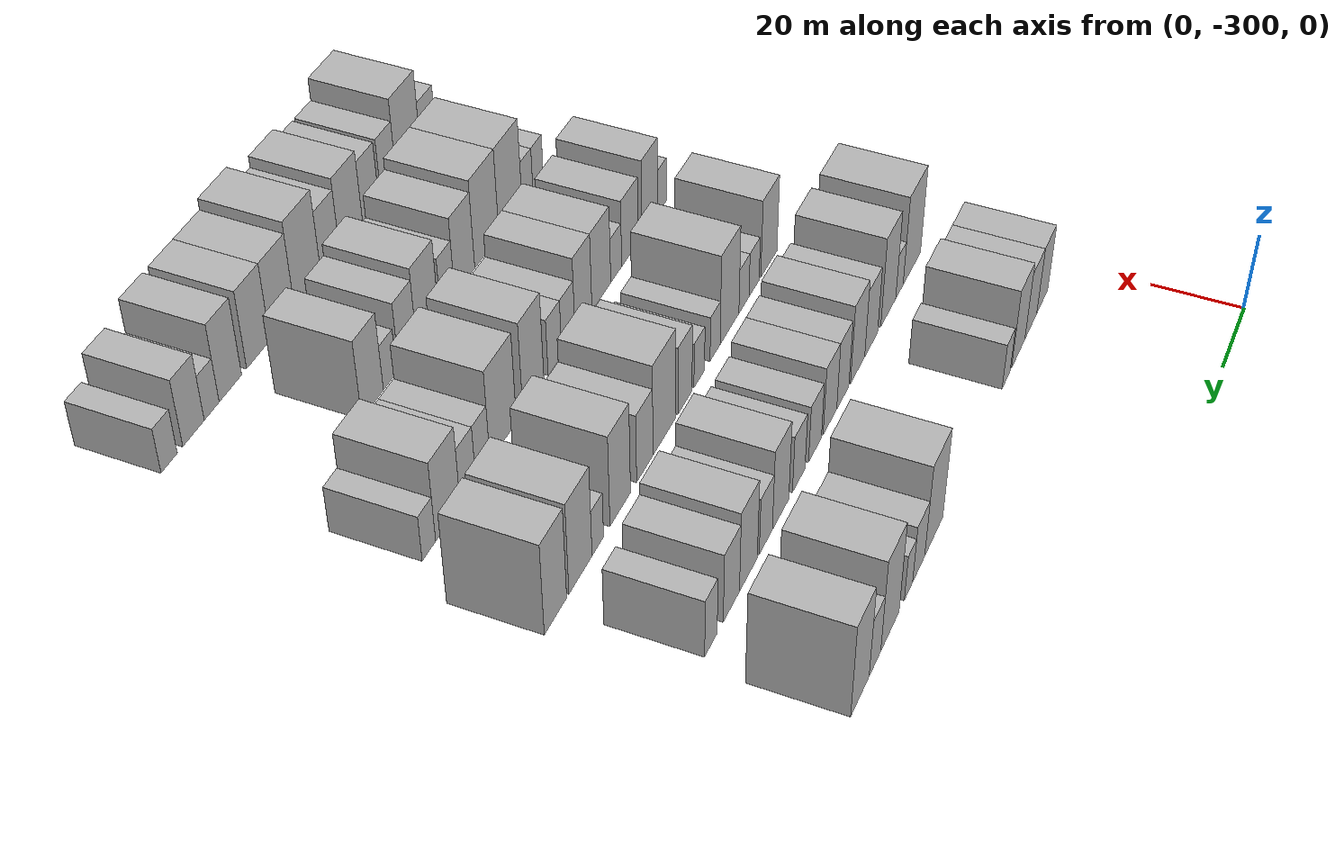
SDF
<sdf version="1.6">
 <world name="default">
  <model name="building_25">
   <static>1</static>
   <pose>50.0000 -285.5791 0 0.000000 0.000000 0.000000</pose>
   <link name="link">
    <pose>0 0 9.00 0 0 0</pose>
    <collision name="collision"><geometry><box><size>20.0000 8.3112 18.0000</size></box></geometry></collision>
    <visual name="visual">
     <cast_shadows>0</cast_shadows>
     <geometry><box><size>20.0000 8.3112 18.0000</size></box></geometry>
     <material>
      <script>
       <uri>model://HANNAS_wall/materials/scripts</uri>
       <uri>model://HANNAS_wall/materials/textures</uri>
       <name>vrc/HANNAS_wall</name>
      </script>
     </material>
    </visual>
   </link>
  </model>
  <model name="building_26">
   <static>1</static>
   <pose>50.0000 -277.0363 0 0.000000 0.000000 0.000000</pose>
   <link name="link">
    <pose>0 0 9.00 0 0 0</pose>
    <collision name="collision"><geometry><box><size>20.0000 8.7744 18.0000</size></box></geometry></collision>
    <visual name="visual">
     <cast_shadows>0</cast_shadows>
     <geometry><box><size>20.0000 8.7744 18.0000</size></box></geometry>
     <material>
      <script>
       <uri>model://HANNAS_wall/materials/scripts</uri>
       <uri>model://HANNAS_wall/materials/textures</uri>
       <name>vrc/HANNAS_wall</name>
      </script>
     </material>
    </visual>
   </link>
  </model>
  <model name="building_27">
   <static>1</static>
   <pose>50.0000 -267.8345 0 0.000000 0.000000 0.000000</pose>
   <link name="link">
    <pose>0 0 10.50 0 0 0</pose>
    <collision name="collision"><geometry><box><size>20.0000 9.6290 21.0000</size></box></geometry></collision>
    <visual name="visual">
     <cast_shadows>0</cast_shadows>
     <geometry><box><size>20.0000 9.6290 21.0000</size></box></geometry>
     <material>
      <script>
       <uri>model://HANNAS_wall/materials/scripts</uri>
       <uri>model://HANNAS_wall/materials/textures</uri>
       <name>vrc/HANNAS_wall</name>
      </script>
     </material>
    </visual>
   </link>
  </model>
  <model name="building_28">
   <static>1</static>
   <pose>50.0000 -259.2189 0 0.000000 0.000000 0.000000</pose>
   <link name="link">
    <pose>0 0 6.00 0 0 0</pose>
    <collision name="collision"><geometry><box><size>20.0000 5.6021 12.0000</size></box></geometry></collision>
    <visual name="visual">
     <cast_shadows>0</cast_shadows>
     <geometry><box><size>20.0000 5.6021 12.0000</size></box></geometry>
     <material>
      <script>
       <uri>model://HANNAS_wall/materials/scripts</uri>
       <uri>model://HANNAS_wall/materials/textures</uri>
       <name>vrc/HANNAS_wall</name>
      </script>
     </material>
    </visual>
   </link>
  </model>
  <model name="building_29">
   <static>1</static>
   <pose>50.0000 -211.8203 0 0.000000 0.000000 0.000000</pose>
   <link name="link">
    <pose>0 0 12.00 0 0 0</pose>
    <collision name="collision"><geometry><box><size>20.0000 11.0650 24.0000</size></box></geometry></collision>
    <visual name="visual">
     <cast_shadows>0</cast_shadows>
     <geometry><box><size>20.0000 11.0650 24.0000</size></box></geometry>
     <material>
      <script>
       <uri>model://HANNAS_wall/materials/scripts</uri>
       <uri>model://HANNAS_wall/materials/textures</uri>
       <name>vrc/HANNAS_wall</name>
      </script>
     </material>
    </visual>
   </link>
  </model>
  <model name="building_30">
   <static>1</static>
   <pose>50.0000 -202.6941 0 0.000000 0.000000 0.000000</pose>
   <link name="link">
    <pose>0 0 7.50 0 0 0</pose>
    <collision name="collision"><geometry><box><size>20.0000 7.1874 15.0000</size></box></geometry></collision>
    <visual name="visual">
     <cast_shadows>0</cast_shadows>
     <geometry><box><size>20.0000 7.1874 15.0000</size></box></geometry>
     <material>
      <script>
       <uri>model://HANNAS_wall/materials/scripts</uri>
       <uri>model://HANNAS_wall/materials/textures</uri>
       <name>vrc/HANNAS_wall</name>
      </script>
     </material>
    </visual>
   </link>
  </model>
  <model name="building_31">
   <static>1</static>
   <pose>50.0000 -196.7004 0 0.000000 0.000000 0.000000</pose>
   <link name="link">
    <pose>0 0 6.00 0 0 0</pose>
    <collision name="collision"><geometry><box><size>20.0000 4.8000 12.0000</size></box></geometry></collision>
    <visual name="visual">
     <cast_shadows>0</cast_shadows>
     <geometry><box><size>20.0000 4.8000 12.0000</size></box></geometry>
     <material>
      <script>
       <uri>model://HANNAS_wall/materials/scripts</uri>
       <uri>model://HANNAS_wall/materials/textures</uri>
       <name>vrc/HANNAS_wall</name>
      </script>
     </material>
    </visual>
   </link>
  </model>
  <model name="building_32">
   <static>1</static>
   <pose>50.0000 -186.1310 0 0.000000 0.000000 0.000000</pose>
   <link name="link">
    <pose>0 0 12.00 0 0 0</pose>
    <collision name="collision"><geometry><box><size>20.0000 10.3387 24.0000</size></box></geometry></collision>
    <visual name="visual">
     <cast_shadows>0</cast_shadows>
     <geometry><box><size>20.0000 10.3387 24.0000</size></box></geometry>
     <material>
      <script>
       <uri>model://HANNAS_wall/materials/scripts</uri>
       <uri>model://HANNAS_wall/materials/textures</uri>
       <name>vrc/HANNAS_wall</name>
      </script>
     </material>
    </visual>
   </link>
  </model>
  <model name="building_33">
   <static>1</static>
   <pose>50.0000 -177.7815 0 0.000000 0.000000 0.000000</pose>
   <link name="link">
    <pose>0 0 7.50 0 0 0</pose>
    <collision name="collision"><geometry><box><size>20.0000 6.3604 15.0000</size></box></geometry></collision>
    <visual name="visual">
     <cast_shadows>0</cast_shadows>
     <geometry><box><size>20.0000 6.3604 15.0000</size></box></geometry>
     <material>
      <script>
       <uri>model://HANNAS_wall/materials/scripts</uri>
       <uri>model://HANNAS_wall/materials/textures</uri>
       <name>vrc/HANNAS_wall</name>
      </script>
     </material>
    </visual>
   </link>
  </model>
  <model name="building_34">
   <static>1</static>
   <pose>50.0000 -169.6660 0 0.000000 0.000000 0.000000</pose>
   <link name="link">
    <pose>0 0 12.00 0 0 0</pose>
    <collision name="collision"><geometry><box><size>20.0000 9.8707 24.0000</size></box></geometry></collision>
    <visual name="visual">
     <cast_shadows>0</cast_shadows>
     <geometry><box><size>20.0000 9.8707 24.0000</size></box></geometry>
     <material>
      <script>
       <uri>model://HANNAS_wall/materials/scripts</uri>
       <uri>model://HANNAS_wall/materials/textures</uri>
       <name>vrc/HANNAS_wall</name>
      </script>
     </material>
    </visual>
   </link>
  </model>
  <model name="building_130">
   <static>1</static>
   <pose>79.0000 -285.2122 0 0.000000 0.000000 0.000000</pose>
   <link name="link">
    <pose>0 0 12.00 0 0 0</pose>
    <collision name="collision"><geometry><box><size>20.0000 11.6987 24.0000</size></box></geometry></collision>
    <visual name="visual">
     <cast_shadows>0</cast_shadows>
     <geometry><box><size>20.0000 11.6987 24.0000</size></box></geometry>
     <material>
      <script>
       <uri>model://HANNAS_wall/materials/scripts</uri>
       <uri>model://HANNAS_wall/materials/textures</uri>
       <name>vrc/HANNAS_wall</name>
      </script>
     </material>
    </visual>
   </link>
  </model>
  <model name="building_131">
   <static>1</static>
   <pose>79.0000 -276.8931 0 0.000000 0.000000 0.000000</pose>
   <link name="link">
    <pose>0 0 6.00 0 0 0</pose>
    <collision name="collision"><geometry><box><size>20.0000 4.9396 12.0000</size></box></geometry></collision>
    <visual name="visual">
     <cast_shadows>0</cast_shadows>
     <geometry><box><size>20.0000 4.9396 12.0000</size></box></geometry>
     <material>
      <script>
       <uri>model://HANNAS_wall/materials/scripts</uri>
       <uri>model://HANNAS_wall/materials/textures</uri>
       <name>vrc/HANNAS_wall</name>
      </script>
     </material>
    </visual>
   </link>
  </model>
  <model name="building_132">
   <static>1</static>
   <pose>79.0000 -269.5852 0 0.000000 0.000000 0.000000</pose>
   <link name="link">
    <pose>0 0 12.00 0 0 0</pose>
    <collision name="collision"><geometry><box><size>20.0000 9.6762 24.0000</size></box></geometry></collision>
    <visual name="visual">
     <cast_shadows>0</cast_shadows>
     <geometry><box><size>20.0000 9.6762 24.0000</size></box></geometry>
     <material>
      <script>
       <uri>model://HANNAS_wall/materials/scripts</uri>
       <uri>model://HANNAS_wall/materials/textures</uri>
       <name>vrc/HANNAS_wall</name>
      </script>
     </material>
    </visual>
   </link>
  </model>
  <model name="building_133">
   <static>1</static>
   <pose>79.0000 -258.6837 0 0.000000 0.000000 0.000000</pose>
   <link name="link">
    <pose>0 0 9.00 0 0 0</pose>
    <collision name="collision"><geometry><box><size>20.0000 8.1267 18.0000</size></box></geometry></collision>
    <visual name="visual">
     <cast_shadows>0</cast_shadows>
     <geometry><box><size>20.0000 8.1267 18.0000</size></box></geometry>
     <material>
      <script>
       <uri>model://HANNAS_wall/materials/scripts</uri>
       <uri>model://HANNAS_wall/materials/textures</uri>
       <name>vrc/HANNAS_wall</name>
      </script>
     </material>
    </visual>
   </link>
  </model>
  <model name="building_134">
   <static>1</static>
   <pose>79.0000 -250.2493 0 0.000000 0.000000 0.000000</pose>
   <link name="link">
    <pose>0 0 10.50 0 0 0</pose>
    <collision name="collision"><geometry><box><size>20.0000 8.7421 21.0000</size></box></geometry></collision>
    <visual name="visual">
     <cast_shadows>0</cast_shadows>
     <geometry><box><size>20.0000 8.7421 21.0000</size></box></geometry>
     <material>
      <script>
       <uri>model://HANNAS_wall/materials/scripts</uri>
       <uri>model://HANNAS_wall/materials/textures</uri>
       <name>vrc/HANNAS_wall</name>
      </script>
     </material>
    </visual>
   </link>
  </model>
  <model name="building_135">
   <static>1</static>
   <pose>79.0000 -241.2637 0 0.000000 0.000000 0.000000</pose>
   <link name="link">
    <pose>0 0 9.00 0 0 0</pose>
    <collision name="collision"><geometry><box><size>20.0000 7.2292 18.0000</size></box></geometry></collision>
    <visual name="visual">
     <cast_shadows>0</cast_shadows>
     <geometry><box><size>20.0000 7.2292 18.0000</size></box></geometry>
     <material>
      <script>
       <uri>model://HANNAS_wall/materials/scripts</uri>
       <uri>model://HANNAS_wall/materials/textures</uri>
       <name>vrc/HANNAS_wall</name>
      </script>
     </material>
    </visual>
   </link>
  </model>
  <model name="building_136">
   <static>1</static>
   <pose>79.0000 -233.6726 0 0.000000 0.000000 0.000000</pose>
   <link name="link">
    <pose>0 0 9.00 0 0 0</pose>
    <collision name="collision"><geometry><box><size>20.0000 7.9530 18.0000</size></box></geometry></collision>
    <visual name="visual">
     <cast_shadows>0</cast_shadows>
     <geometry><box><size>20.0000 7.9530 18.0000</size></box></geometry>
     <material>
      <script>
       <uri>model://HANNAS_wall/materials/scripts</uri>
       <uri>model://HANNAS_wall/materials/textures</uri>
       <name>vrc/HANNAS_wall</name>
      </script>
     </material>
    </visual>
   </link>
  </model>
  <model name="building_137">
   <static>1</static>
   <pose>79.0000 -225.0202 0 0.000000 0.000000 0.000000</pose>
   <link name="link">
    <pose>0 0 7.50 0 0 0</pose>
    <collision name="collision"><geometry><box><size>20.0000 7.3518 15.0000</size></box></geometry></collision>
    <visual name="visual">
     <cast_shadows>0</cast_shadows>
     <geometry><box><size>20.0000 7.3518 15.0000</size></box></geometry>
     <material>
      <script>
       <uri>model://HANNAS_wall/materials/scripts</uri>
       <uri>model://HANNAS_wall/materials/textures</uri>
       <name>vrc/HANNAS_wall</name>
      </script>
     </material>
    </visual>
   </link>
  </model>
  <model name="building_138">
   <static>1</static>
   <pose>79.0000 -215.8601 0 0.000000 0.000000 0.000000</pose>
   <link name="link">
    <pose>0 0 7.50 0 0 0</pose>
    <collision name="collision"><geometry><box><size>20.0000 6.9683 15.0000</size></box></geometry></collision>
    <visual name="visual">
     <cast_shadows>0</cast_shadows>
     <geometry><box><size>20.0000 6.9683 15.0000</size></box></geometry>
     <material>
      <script>
       <uri>model://HANNAS_wall/materials/scripts</uri>
       <uri>model://HANNAS_wall/materials/textures</uri>
       <name>vrc/HANNAS_wall</name>
      </script>
     </material>
    </visual>
   </link>
  </model>
  <model name="building_139">
   <static>1</static>
   <pose>79.0000 -205.9553 0 0.000000 0.000000 0.000000</pose>
   <link name="link">
    <pose>0 0 10.50 0 0 0</pose>
    <collision name="collision"><geometry><box><size>20.0000 8.8414 21.0000</size></box></geometry></collision>
    <visual name="visual">
     <cast_shadows>0</cast_shadows>
     <geometry><box><size>20.0000 8.8414 21.0000</size></box></geometry>
     <material>
      <script>
       <uri>model://HANNAS_wall/materials/scripts</uri>
       <uri>model://HANNAS_wall/materials/textures</uri>
       <name>vrc/HANNAS_wall</name>
      </script>
     </material>
    </visual>
   </link>
  </model>
  <model name="building_140">
   <static>1</static>
   <pose>79.0000 -198.0719 0 0.000000 0.000000 0.000000</pose>
   <link name="link">
    <pose>0 0 7.50 0 0 0</pose>
    <collision name="collision"><geometry><box><size>20.0000 6.9252 15.0000</size></box></geometry></collision>
    <visual name="visual">
     <cast_shadows>0</cast_shadows>
     <geometry><box><size>20.0000 6.9252 15.0000</size></box></geometry>
     <material>
      <script>
       <uri>model://HANNAS_wall/materials/scripts</uri>
       <uri>model://HANNAS_wall/materials/textures</uri>
       <name>vrc/HANNAS_wall</name>
      </script>
     </material>
    </visual>
   </link>
  </model>
  <model name="building_141">
   <static>1</static>
   <pose>79.0000 -189.0534 0 0.000000 0.000000 0.000000</pose>
   <link name="link">
    <pose>0 0 10.50 0 0 0</pose>
    <collision name="collision"><geometry><box><size>20.0000 9.1119 21.0000</size></box></geometry></collision>
    <visual name="visual">
     <cast_shadows>0</cast_shadows>
     <geometry><box><size>20.0000 9.1119 21.0000</size></box></geometry>
     <material>
      <script>
       <uri>model://HANNAS_wall/materials/scripts</uri>
       <uri>model://HANNAS_wall/materials/textures</uri>
       <name>vrc/HANNAS_wall</name>
      </script>
     </material>
    </visual>
   </link>
  </model>
  <model name="building_142">
   <static>1</static>
   <pose>79.0000 -180.4766 0 0.000000 0.000000 0.000000</pose>
   <link name="link">
    <pose>0 0 9.00 0 0 0</pose>
    <collision name="collision"><geometry><box><size>20.0000 8.0416 18.0000</size></box></geometry></collision>
    <visual name="visual">
     <cast_shadows>0</cast_shadows>
     <geometry><box><size>20.0000 8.0416 18.0000</size></box></geometry>
     <material>
      <script>
       <uri>model://HANNAS_wall/materials/scripts</uri>
       <uri>model://HANNAS_wall/materials/textures</uri>
       <name>vrc/HANNAS_wall</name>
      </script>
     </material>
    </visual>
   </link>
  </model>
  <model name="building_143">
   <static>1</static>
   <pose>79.0000 -170.4449 0 0.000000 0.000000 0.000000</pose>
   <link name="link">
    <pose>0 0 7.50 0 0 0</pose>
    <collision name="collision"><geometry><box><size>20.0000 6.0220 15.0000</size></box></geometry></collision>
    <visual name="visual">
     <cast_shadows>0</cast_shadows>
     <geometry><box><size>20.0000 6.0220 15.0000</size></box></geometry>
     <material>
      <script>
       <uri>model://HANNAS_wall/materials/scripts</uri>
       <uri>model://HANNAS_wall/materials/textures</uri>
       <name>vrc/HANNAS_wall</name>
      </script>
     </material>
    </visual>
   </link>
  </model>
  <model name="building_248">
   <static>1</static>
   <pose>108.0000 -274.7239 0 0.000000 0.000000 0.000000</pose>
   <link name="link">
    <pose>0 0 10.50 0 0 0</pose>
    <collision name="collision"><geometry><box><size>20.0000 9.6559 21.0000</size></box></geometry></collision>
    <visual name="visual">
     <cast_shadows>0</cast_shadows>
     <geometry><box><size>20.0000 9.6559 21.0000</size></box></geometry>
     <material>
      <script>
       <uri>model://HANNAS_wall/materials/scripts</uri>
       <uri>model://HANNAS_wall/materials/textures</uri>
       <name>vrc/HANNAS_wall</name>
      </script>
     </material>
    </visual>
   </link>
  </model>
  <model name="building_249">
   <static>1</static>
   <pose>108.0000 -265.9381 0 0.000000 0.000000 0.000000</pose>
   <link name="link">
    <pose>0 0 6.00 0 0 0</pose>
    <collision name="collision"><geometry><box><size>20.0000 5.9157 12.0000</size></box></geometry></collision>
    <visual name="visual">
     <cast_shadows>0</cast_shadows>
     <geometry><box><size>20.0000 5.9157 12.0000</size></box></geometry>
     <material>
      <script>
       <uri>model://HANNAS_wall/materials/scripts</uri>
       <uri>model://HANNAS_wall/materials/textures</uri>
       <name>vrc/HANNAS_wall</name>
      </script>
     </material>
    </visual>
   </link>
  </model>
  <model name="building_250">
   <static>1</static>
   <pose>108.0000 -260.0657 0 0.000000 0.000000 0.000000</pose>
   <link name="link">
    <pose>0 0 6.00 0 0 0</pose>
    <collision name="collision"><geometry><box><size>20.0000 5.8291 12.0000</size></box></geometry></collision>
    <visual name="visual">
     <cast_shadows>0</cast_shadows>
     <geometry><box><size>20.0000 5.8291 12.0000</size></box></geometry>
     <material>
      <script>
       <uri>model://HANNAS_wall/materials/scripts</uri>
       <uri>model://HANNAS_wall/materials/textures</uri>
       <name>vrc/HANNAS_wall</name>
      </script>
     </material>
    </visual>
   </link>
  </model>
  <model name="building_251">
   <static>1</static>
   <pose>108.0000 -251.8795 0 0.000000 0.000000 0.000000</pose>
   <link name="link">
    <pose>0 0 12.00 0 0 0</pose>
    <collision name="collision"><geometry><box><size>20.0000 10.5434 24.0000</size></box></geometry></collision>
    <visual name="visual">
     <cast_shadows>0</cast_shadows>
     <geometry><box><size>20.0000 10.5434 24.0000</size></box></geometry>
     <material>
      <script>
       <uri>model://HANNAS_wall/materials/scripts</uri>
       <uri>model://HANNAS_wall/materials/textures</uri>
       <name>vrc/HANNAS_wall</name>
      </script>
     </material>
    </visual>
   </link>
  </model>
  <model name="building_252">
   <static>1</static>
   <pose>108.0000 -243.8356 0 0.000000 0.000000 0.000000</pose>
   <link name="link">
    <pose>0 0 6.00 0 0 0</pose>
    <collision name="collision"><geometry><box><size>20.0000 5.5444 12.0000</size></box></geometry></collision>
    <visual name="visual">
     <cast_shadows>0</cast_shadows>
     <geometry><box><size>20.0000 5.5444 12.0000</size></box></geometry>
     <material>
      <script>
       <uri>model://HANNAS_wall/materials/scripts</uri>
       <uri>model://HANNAS_wall/materials/textures</uri>
       <name>vrc/HANNAS_wall</name>
      </script>
     </material>
    </visual>
   </link>
  </model>
  <model name="building_253">
   <static>1</static>
   <pose>108.0000 -235.2201 0 0.000000 0.000000 0.000000</pose>
   <link name="link">
    <pose>0 0 6.00 0 0 0</pose>
    <collision name="collision"><geometry><box><size>20.0000 5.6866 12.0000</size></box></geometry></collision>
    <visual name="visual">
     <cast_shadows>0</cast_shadows>
     <geometry><box><size>20.0000 5.6866 12.0000</size></box></geometry>
     <material>
      <script>
       <uri>model://HANNAS_wall/materials/scripts</uri>
       <uri>model://HANNAS_wall/materials/textures</uri>
       <name>vrc/HANNAS_wall</name>
      </script>
     </material>
    </visual>
   </link>
  </model>
  <model name="building_254">
   <static>1</static>
   <pose>108.0000 -227.6547 0 0.000000 0.000000 0.000000</pose>
   <link name="link">
    <pose>0 0 9.00 0 0 0</pose>
    <collision name="collision"><geometry><box><size>20.0000 7.4444 18.0000</size></box></geometry></collision>
    <visual name="visual">
     <cast_shadows>0</cast_shadows>
     <geometry><box><size>20.0000 7.4444 18.0000</size></box></geometry>
     <material>
      <script>
       <uri>model://HANNAS_wall/materials/scripts</uri>
       <uri>model://HANNAS_wall/materials/textures</uri>
       <name>vrc/HANNAS_wall</name>
      </script>
     </material>
    </visual>
   </link>
  </model>
  <model name="building_255">
   <static>1</static>
   <pose>108.0000 -217.1111 0 0.000000 0.000000 0.000000</pose>
   <link name="link">
    <pose>0 0 12.00 0 0 0</pose>
    <collision name="collision"><geometry><box><size>20.0000 11.6427 24.0000</size></box></geometry></collision>
    <visual name="visual">
     <cast_shadows>0</cast_shadows>
     <geometry><box><size>20.0000 11.6427 24.0000</size></box></geometry>
     <material>
      <script>
       <uri>model://HANNAS_wall/materials/scripts</uri>
       <uri>model://HANNAS_wall/materials/textures</uri>
       <name>vrc/HANNAS_wall</name>
      </script>
     </material>
    </visual>
   </link>
  </model>
  <model name="building_256">
   <static>1</static>
   <pose>108.0000 -207.2254 0 0.000000 0.000000 0.000000</pose>
   <link name="link">
    <pose>0 0 9.00 0 0 0</pose>
    <collision name="collision"><geometry><box><size>20.0000 8.1288 18.0000</size></box></geometry></collision>
    <visual name="visual">
     <cast_shadows>0</cast_shadows>
     <geometry><box><size>20.0000 8.1288 18.0000</size></box></geometry>
     <material>
      <script>
       <uri>model://HANNAS_wall/materials/scripts</uri>
       <uri>model://HANNAS_wall/materials/textures</uri>
       <name>vrc/HANNAS_wall</name>
      </script>
     </material>
    </visual>
   </link>
  </model>
  <model name="building_257">
   <static>1</static>
   <pose>108.0000 -195.2628 0 0.000000 0.000000 0.000000</pose>
   <link name="link">
    <pose>0 0 12.00 0 0 0</pose>
    <collision name="collision"><geometry><box><size>20.0000 9.7965 24.0000</size></box></geometry></collision>
    <visual name="visual">
     <cast_shadows>0</cast_shadows>
     <geometry><box><size>20.0000 9.7965 24.0000</size></box></geometry>
     <material>
      <script>
       <uri>model://HANNAS_wall/materials/scripts</uri>
       <uri>model://HANNAS_wall/materials/textures</uri>
       <name>vrc/HANNAS_wall</name>
      </script>
     </material>
    </visual>
   </link>
  </model>
  <model name="building_258">
   <static>1</static>
   <pose>108.0000 -184.7047 0 0.000000 0.000000 0.000000</pose>
   <link name="link">
    <pose>0 0 6.00 0 0 0</pose>
    <collision name="collision"><geometry><box><size>20.0000 5.3196 12.0000</size></box></geometry></collision>
    <visual name="visual">
     <cast_shadows>0</cast_shadows>
     <geometry><box><size>20.0000 5.3196 12.0000</size></box></geometry>
     <material>
      <script>
       <uri>model://HANNAS_wall/materials/scripts</uri>
       <uri>model://HANNAS_wall/materials/textures</uri>
       <name>vrc/HANNAS_wall</name>
      </script>
     </material>
    </visual>
   </link>
  </model>
  <model name="building_259">
   <static>1</static>
   <pose>108.0000 -176.8374 0 0.000000 0.000000 0.000000</pose>
   <link name="link">
    <pose>0 0 12.00 0 0 0</pose>
    <collision name="collision"><geometry><box><size>20.0000 10.4149 24.0000</size></box></geometry></collision>
    <visual name="visual">
     <cast_shadows>0</cast_shadows>
     <geometry><box><size>20.0000 10.4149 24.0000</size></box></geometry>
     <material>
      <script>
       <uri>model://HANNAS_wall/materials/scripts</uri>
       <uri>model://HANNAS_wall/materials/textures</uri>
       <name>vrc/HANNAS_wall</name>
      </script>
     </material>
    </visual>
   </link>
  </model>
  <model name="building_260">
   <static>1</static>
   <pose>108.0000 -165.7679 0 0.000000 0.000000 0.000000</pose>
   <link name="link">
    <pose>0 0 12.00 0 0 0</pose>
    <collision name="collision"><geometry><box><size>20.0000 9.7240 24.0000</size></box></geometry></collision>
    <visual name="visual">
     <cast_shadows>0</cast_shadows>
     <geometry><box><size>20.0000 9.7240 24.0000</size></box></geometry>
     <material>
      <script>
       <uri>model://HANNAS_wall/materials/scripts</uri>
       <uri>model://HANNAS_wall/materials/textures</uri>
       <name>vrc/HANNAS_wall</name>
      </script>
     </material>
    </visual>
   </link>
  </model>
  <model name="building_358">
   <static>1</static>
   <pose>137.0000 -283.9054 0 0.000000 0.000000 0.000000</pose>
   <link name="link">
    <pose>0 0 6.00 0 0 0</pose>
    <collision name="collision"><geometry><box><size>20.0000 4.9103 12.0000</size></box></geometry></collision>
    <visual name="visual">
     <cast_shadows>0</cast_shadows>
     <geometry><box><size>20.0000 4.9103 12.0000</size></box></geometry>
     <material>
      <script>
       <uri>model://HANNAS_wall/materials/scripts</uri>
       <uri>model://HANNAS_wall/materials/textures</uri>
       <name>vrc/HANNAS_wall</name>
      </script>
     </material>
    </visual>
   </link>
  </model>
  <model name="building_359">
   <static>1</static>
   <pose>137.0000 -277.0171 0 0.000000 0.000000 0.000000</pose>
   <link name="link">
    <pose>0 0 10.50 0 0 0</pose>
    <collision name="collision"><geometry><box><size>20.0000 8.8662 21.0000</size></box></geometry></collision>
    <visual name="visual">
     <cast_shadows>0</cast_shadows>
     <geometry><box><size>20.0000 8.8662 21.0000</size></box></geometry>
     <material>
      <script>
       <uri>model://HANNAS_wall/materials/scripts</uri>
       <uri>model://HANNAS_wall/materials/textures</uri>
       <name>vrc/HANNAS_wall</name>
      </script>
     </material>
    </visual>
   </link>
  </model>
  <model name="building_360">
   <static>1</static>
   <pose>137.0000 -266.1067 0 0.000000 0.000000 0.000000</pose>
   <link name="link">
    <pose>0 0 9.00 0 0 0</pose>
    <collision name="collision"><geometry><box><size>20.0000 8.9546 18.0000</size></box></geometry></collision>
    <visual name="visual">
     <cast_shadows>0</cast_shadows>
     <geometry><box><size>20.0000 8.9546 18.0000</size></box></geometry>
     <material>
      <script>
       <uri>model://HANNAS_wall/materials/scripts</uri>
       <uri>model://HANNAS_wall/materials/textures</uri>
       <name>vrc/HANNAS_wall</name>
      </script>
     </material>
    </visual>
   </link>
  </model>
  <model name="building_361">
   <static>1</static>
   <pose>137.0000 -258.7174 0 0.000000 0.000000 0.000000</pose>
   <link name="link">
    <pose>0 0 6.00 0 0 0</pose>
    <collision name="collision"><geometry><box><size>20.0000 5.8241 12.0000</size></box></geometry></collision>
    <visual name="visual">
     <cast_shadows>0</cast_shadows>
     <geometry><box><size>20.0000 5.8241 12.0000</size></box></geometry>
     <material>
      <script>
       <uri>model://HANNAS_wall/materials/scripts</uri>
       <uri>model://HANNAS_wall/materials/textures</uri>
       <name>vrc/HANNAS_wall</name>
      </script>
     </material>
    </visual>
   </link>
  </model>
  <model name="building_362">
   <static>1</static>
   <pose>137.0000 -250.9227 0 0.000000 0.000000 0.000000</pose>
   <link name="link">
    <pose>0 0 10.50 0 0 0</pose>
    <collision name="collision"><geometry><box><size>20.0000 9.7654 21.0000</size></box></geometry></collision>
    <visual name="visual">
     <cast_shadows>0</cast_shadows>
     <geometry><box><size>20.0000 9.7654 21.0000</size></box></geometry>
     <material>
      <script>
       <uri>model://HANNAS_wall/materials/scripts</uri>
       <uri>model://HANNAS_wall/materials/textures</uri>
       <name>vrc/HANNAS_wall</name>
      </script>
     </material>
    </visual>
   </link>
  </model>
  <model name="building_363">
   <static>1</static>
   <pose>137.0000 -241.7642 0 0.000000 0.000000 0.000000</pose>
   <link name="link">
    <pose>0 0 10.50 0 0 0</pose>
    <collision name="collision"><geometry><box><size>20.0000 8.5517 21.0000</size></box></geometry></collision>
    <visual name="visual">
     <cast_shadows>0</cast_shadows>
     <geometry><box><size>20.0000 8.5517 21.0000</size></box></geometry>
     <material>
      <script>
       <uri>model://HANNAS_wall/materials/scripts</uri>
       <uri>model://HANNAS_wall/materials/textures</uri>
       <name>vrc/HANNAS_wall</name>
      </script>
     </material>
    </visual>
   </link>
  </model>
  <model name="building_364">
   <static>1</static>
   <pose>137.0000 -234.1995 0 0.000000 0.000000 0.000000</pose>
   <link name="link">
    <pose>0 0 7.50 0 0 0</pose>
    <collision name="collision"><geometry><box><size>20.0000 6.5777 15.0000</size></box></geometry></collision>
    <visual name="visual">
     <cast_shadows>0</cast_shadows>
     <geometry><box><size>20.0000 6.5777 15.0000</size></box></geometry>
     <material>
      <script>
       <uri>model://HANNAS_wall/materials/scripts</uri>
       <uri>model://HANNAS_wall/materials/textures</uri>
       <name>vrc/HANNAS_wall</name>
      </script>
     </material>
    </visual>
   </link>
  </model>
  <model name="building_365">
   <static>1</static>
   <pose>137.0000 -227.5906 0 0.000000 0.000000 0.000000</pose>
   <link name="link">
    <pose>0 0 7.50 0 0 0</pose>
    <collision name="collision"><geometry><box><size>20.0000 6.6401 15.0000</size></box></geometry></collision>
    <visual name="visual">
     <cast_shadows>0</cast_shadows>
     <geometry><box><size>20.0000 6.6401 15.0000</size></box></geometry>
     <material>
      <script>
       <uri>model://HANNAS_wall/materials/scripts</uri>
       <uri>model://HANNAS_wall/materials/textures</uri>
       <name>vrc/HANNAS_wall</name>
      </script>
     </material>
    </visual>
   </link>
  </model>
  <model name="building_366">
   <static>1</static>
   <pose>137.0000 -217.2969 0 0.000000 0.000000 0.000000</pose>
   <link name="link">
    <pose>0 0 12.00 0 0 0</pose>
    <collision name="collision"><geometry><box><size>20.0000 9.9473 24.0000</size></box></geometry></collision>
    <visual name="visual">
     <cast_shadows>0</cast_shadows>
     <geometry><box><size>20.0000 9.9473 24.0000</size></box></geometry>
     <material>
      <script>
       <uri>model://HANNAS_wall/materials/scripts</uri>
       <uri>model://HANNAS_wall/materials/textures</uri>
       <name>vrc/HANNAS_wall</name>
      </script>
     </material>
    </visual>
   </link>
  </model>
  <model name="building_367">
   <static>1</static>
   <pose>137.0000 -203.3331 0 0.000000 0.000000 0.000000</pose>
   <link name="link">
    <pose>0 0 12.00 0 0 0</pose>
    <collision name="collision"><geometry><box><size>20.0000 11.9802 24.0000</size></box></geometry></collision>
    <visual name="visual">
     <cast_shadows>0</cast_shadows>
     <geometry><box><size>20.0000 11.9802 24.0000</size></box></geometry>
     <material>
      <script>
       <uri>model://HANNAS_wall/materials/scripts</uri>
       <uri>model://HANNAS_wall/materials/textures</uri>
       <name>vrc/HANNAS_wall</name>
      </script>
     </material>
    </visual>
   </link>
  </model>
  <model name="building_368">
   <static>1</static>
   <pose>137.0000 -194.2279 0 0.000000 0.000000 0.000000</pose>
   <link name="link">
    <pose>0 0 7.50 0 0 0</pose>
    <collision name="collision"><geometry><box><size>20.0000 6.2302 15.0000</size></box></geometry></collision>
    <visual name="visual">
     <cast_shadows>0</cast_shadows>
     <geometry><box><size>20.0000 6.2302 15.0000</size></box></geometry>
     <material>
      <script>
       <uri>model://HANNAS_wall/materials/scripts</uri>
       <uri>model://HANNAS_wall/materials/textures</uri>
       <name>vrc/HANNAS_wall</name>
      </script>
     </material>
    </visual>
   </link>
  </model>
  <model name="building_369">
   <static>1</static>
   <pose>137.0000 -187.7317 0 0.000000 0.000000 0.000000</pose>
   <link name="link">
    <pose>0 0 7.50 0 0 0</pose>
    <collision name="collision"><geometry><box><size>20.0000 6.7623 15.0000</size></box></geometry></collision>
    <visual name="visual">
     <cast_shadows>0</cast_shadows>
     <geometry><box><size>20.0000 6.7623 15.0000</size></box></geometry>
     <material>
      <script>
       <uri>model://HANNAS_wall/materials/scripts</uri>
       <uri>model://HANNAS_wall/materials/textures</uri>
       <name>vrc/HANNAS_wall</name>
      </script>
     </material>
    </visual>
   </link>
  </model>
  <model name="building_370">
   <static>1</static>
   <pose>137.0000 -179.1748 0 0.000000 0.000000 0.000000</pose>
   <link name="link">
    <pose>0 0 10.50 0 0 0</pose>
    <collision name="collision"><geometry><box><size>20.0000 10.3515 21.0000</size></box></geometry></collision>
    <visual name="visual">
     <cast_shadows>0</cast_shadows>
     <geometry><box><size>20.0000 10.3515 21.0000</size></box></geometry>
     <material>
      <script>
       <uri>model://HANNAS_wall/materials/scripts</uri>
       <uri>model://HANNAS_wall/materials/textures</uri>
       <name>vrc/HANNAS_wall</name>
      </script>
     </material>
    </visual>
   </link>
  </model>
  <model name="building_371">
   <static>1</static>
   <pose>137.0000 -171.2241 0 0.000000 0.000000 0.000000</pose>
   <link name="link">
    <pose>0 0 6.00 0 0 0</pose>
    <collision name="collision"><geometry><box><size>20.0000 5.5499 12.0000</size></box></geometry></collision>
    <visual name="visual">
     <cast_shadows>0</cast_shadows>
     <geometry><box><size>20.0000 5.5499 12.0000</size></box></geometry>
     <material>
      <script>
       <uri>model://HANNAS_wall/materials/scripts</uri>
       <uri>model://HANNAS_wall/materials/textures</uri>
       <name>vrc/HANNAS_wall</name>
      </script>
     </material>
    </visual>
   </link>
  </model>
  <model name="building_476">
   <static>1</static>
   <pose>166.0000 -280.6610 0 0.000000 0.000000 0.000000</pose>
   <link name="link">
    <pose>0 0 6.00 0 0 0</pose>
    <collision name="collision"><geometry><box><size>20.0000 5.4339 12.0000</size></box></geometry></collision>
    <visual name="visual">
     <cast_shadows>0</cast_shadows>
     <geometry><box><size>20.0000 5.4339 12.0000</size></box></geometry>
     <material>
      <script>
       <uri>model://HANNAS_wall/materials/scripts</uri>
       <uri>model://HANNAS_wall/materials/textures</uri>
       <name>vrc/HANNAS_wall</name>
      </script>
     </material>
    </visual>
   </link>
  </model>
  <model name="building_477">
   <static>1</static>
   <pose>166.0000 -275.1427 0 0.000000 0.000000 0.000000</pose>
   <link name="link">
    <pose>0 0 6.00 0 0 0</pose>
    <collision name="collision"><geometry><box><size>20.0000 5.6028 12.0000</size></box></geometry></collision>
    <visual name="visual">
     <cast_shadows>0</cast_shadows>
     <geometry><box><size>20.0000 5.6028 12.0000</size></box></geometry>
     <material>
      <script>
       <uri>model://HANNAS_wall/materials/scripts</uri>
       <uri>model://HANNAS_wall/materials/textures</uri>
       <name>vrc/HANNAS_wall</name>
      </script>
     </material>
    </visual>
   </link>
  </model>
  <model name="building_478">
   <static>1</static>
   <pose>166.0000 -266.4930 0 0.000000 0.000000 0.000000</pose>
   <link name="link">
    <pose>0 0 12.00 0 0 0</pose>
    <collision name="collision"><geometry><box><size>20.0000 11.6965 24.0000</size></box></geometry></collision>
    <visual name="visual">
     <cast_shadows>0</cast_shadows>
     <geometry><box><size>20.0000 11.6965 24.0000</size></box></geometry>
     <material>
      <script>
       <uri>model://HANNAS_wall/materials/scripts</uri>
       <uri>model://HANNAS_wall/materials/textures</uri>
       <name>vrc/HANNAS_wall</name>
      </script>
     </material>
    </visual>
   </link>
  </model>
  <model name="building_479">
   <static>1</static>
   <pose>166.0000 -254.7176 0 0.000000 0.000000 0.000000</pose>
   <link name="link">
    <pose>0 0 12.00 0 0 0</pose>
    <collision name="collision"><geometry><box><size>20.0000 11.8544 24.0000</size></box></geometry></collision>
    <visual name="visual">
     <cast_shadows>0</cast_shadows>
     <geometry><box><size>20.0000 11.8544 24.0000</size></box></geometry>
     <material>
      <script>
       <uri>model://HANNAS_wall/materials/scripts</uri>
       <uri>model://HANNAS_wall/materials/textures</uri>
       <name>vrc/HANNAS_wall</name>
      </script>
     </material>
    </visual>
   </link>
  </model>
  <model name="building_480">
   <static>1</static>
   <pose>166.0000 -244.0205 0 0.000000 0.000000 0.000000</pose>
   <link name="link">
    <pose>0 0 10.50 0 0 0</pose>
    <collision name="collision"><geometry><box><size>20.0000 9.5399 21.0000</size></box></geometry></collision>
    <visual name="visual">
     <cast_shadows>0</cast_shadows>
     <geometry><box><size>20.0000 9.5399 21.0000</size></box></geometry>
     <material>
      <script>
       <uri>model://HANNAS_wall/materials/scripts</uri>
       <uri>model://HANNAS_wall/materials/textures</uri>
       <name>vrc/HANNAS_wall</name>
      </script>
     </material>
    </visual>
   </link>
  </model>
  <model name="building_481">
   <static>1</static>
   <pose>166.0000 -236.0274 0 0.000000 0.000000 0.000000</pose>
   <link name="link">
    <pose>0 0 7.50 0 0 0</pose>
    <collision name="collision"><geometry><box><size>20.0000 6.4462 15.0000</size></box></geometry></collision>
    <visual name="visual">
     <cast_shadows>0</cast_shadows>
     <geometry><box><size>20.0000 6.4462 15.0000</size></box></geometry>
     <material>
      <script>
       <uri>model://HANNAS_wall/materials/scripts</uri>
       <uri>model://HANNAS_wall/materials/textures</uri>
       <name>vrc/HANNAS_wall</name>
      </script>
     </material>
    </visual>
   </link>
  </model>
  <model name="building_482">
   <static>1</static>
   <pose>166.0000 -226.8143 0 0.000000 0.000000 0.000000</pose>
   <link name="link">
    <pose>0 0 10.50 0 0 0</pose>
    <collision name="collision"><geometry><box><size>20.0000 9.9801 21.0000</size></box></geometry></collision>
    <visual name="visual">
     <cast_shadows>0</cast_shadows>
     <geometry><box><size>20.0000 9.9801 21.0000</size></box></geometry>
     <material>
      <script>
       <uri>model://HANNAS_wall/materials/scripts</uri>
       <uri>model://HANNAS_wall/materials/textures</uri>
       <name>vrc/HANNAS_wall</name>
      </script>
     </material>
    </visual>
   </link>
  </model>
  <model name="building_483">
   <static>1</static>
   <pose>166.0000 -217.8748 0 0.000000 0.000000 0.000000</pose>
   <link name="link">
    <pose>0 0 9.00 0 0 0</pose>
    <collision name="collision"><geometry><box><size>20.0000 7.8988 18.0000</size></box></geometry></collision>
    <visual name="visual">
     <cast_shadows>0</cast_shadows>
     <geometry><box><size>20.0000 7.8988 18.0000</size></box></geometry>
     <material>
      <script>
       <uri>model://HANNAS_wall/materials/scripts</uri>
       <uri>model://HANNAS_wall/materials/textures</uri>
       <name>vrc/HANNAS_wall</name>
      </script>
     </material>
    </visual>
   </link>
  </model>
  <model name="building_484">
   <static>1</static>
   <pose>166.0000 -210.0633 0 0.000000 0.000000 0.000000</pose>
   <link name="link">
    <pose>0 0 6.00 0 0 0</pose>
    <collision name="collision"><geometry><box><size>20.0000 5.7242 12.0000</size></box></geometry></collision>
    <visual name="visual">
     <cast_shadows>0</cast_shadows>
     <geometry><box><size>20.0000 5.7242 12.0000</size></box></geometry>
     <material>
      <script>
       <uri>model://HANNAS_wall/materials/scripts</uri>
       <uri>model://HANNAS_wall/materials/textures</uri>
       <name>vrc/HANNAS_wall</name>
      </script>
     </material>
    </visual>
   </link>
  </model>
  <model name="building_485">
   <static>1</static>
   <pose>166.0000 -202.6036 0 0.000000 0.000000 0.000000</pose>
   <link name="link">
    <pose>0 0 10.50 0 0 0</pose>
    <collision name="collision"><geometry><box><size>20.0000 9.1950 21.0000</size></box></geometry></collision>
    <visual name="visual">
     <cast_shadows>0</cast_shadows>
     <geometry><box><size>20.0000 9.1950 21.0000</size></box></geometry>
     <material>
      <script>
       <uri>model://HANNAS_wall/materials/scripts</uri>
       <uri>model://HANNAS_wall/materials/textures</uri>
       <name>vrc/HANNAS_wall</name>
      </script>
     </material>
    </visual>
   </link>
  </model>
  <model name="building_579">
   <static>1</static>
   <pose>195.0000 -283.2479 0 0.000000 0.000000 0.000000</pose>
   <link name="link">
    <pose>0 0 7.50 0 0 0</pose>
    <collision name="collision"><geometry><box><size>20.0000 7.4846 15.0000</size></box></geometry></collision>
    <visual name="visual">
     <cast_shadows>0</cast_shadows>
     <geometry><box><size>20.0000 7.4846 15.0000</size></box></geometry>
     <material>
      <script>
       <uri>model://HANNAS_wall/materials/scripts</uri>
       <uri>model://HANNAS_wall/materials/textures</uri>
       <name>vrc/HANNAS_wall</name>
      </script>
     </material>
    </visual>
   </link>
  </model>
  <model name="building_580">
   <static>1</static>
   <pose>195.0000 -273.6593 0 0.000000 0.000000 0.000000</pose>
   <link name="link">
    <pose>0 0 12.00 0 0 0</pose>
    <collision name="collision"><geometry><box><size>20.0000 11.6926 24.0000</size></box></geometry></collision>
    <visual name="visual">
     <cast_shadows>0</cast_shadows>
     <geometry><box><size>20.0000 11.6926 24.0000</size></box></geometry>
     <material>
      <script>
       <uri>model://HANNAS_wall/materials/scripts</uri>
       <uri>model://HANNAS_wall/materials/textures</uri>
       <name>vrc/HANNAS_wall</name>
      </script>
     </material>
    </visual>
   </link>
  </model>
  <model name="building_581">
   <static>1</static>
   <pose>195.0000 -264.1900 0 0.000000 0.000000 0.000000</pose>
   <link name="link">
    <pose>0 0 9.00 0 0 0</pose>
    <collision name="collision"><geometry><box><size>20.0000 7.2459 18.0000</size></box></geometry></collision>
    <visual name="visual">
     <cast_shadows>0</cast_shadows>
     <geometry><box><size>20.0000 7.2459 18.0000</size></box></geometry>
     <material>
      <script>
       <uri>model://HANNAS_wall/materials/scripts</uri>
       <uri>model://HANNAS_wall/materials/textures</uri>
       <name>vrc/HANNAS_wall</name>
      </script>
     </material>
    </visual>
   </link>
  </model>
  <model name="building_582">
   <static>1</static>
   <pose>195.0000 -255.7470 0 0.000000 0.000000 0.000000</pose>
   <link name="link">
    <pose>0 0 9.00 0 0 0</pose>
    <collision name="collision"><geometry><box><size>20.0000 7.6401 18.0000</size></box></geometry></collision>
    <visual name="visual">
     <cast_shadows>0</cast_shadows>
     <geometry><box><size>20.0000 7.6401 18.0000</size></box></geometry>
     <material>
      <script>
       <uri>model://HANNAS_wall/materials/scripts</uri>
       <uri>model://HANNAS_wall/materials/textures</uri>
       <name>vrc/HANNAS_wall</name>
      </script>
     </material>
    </visual>
   </link>
  </model>
  <model name="building_583">
   <static>1</static>
   <pose>195.0000 -246.7267 0 0.000000 0.000000 0.000000</pose>
   <link name="link">
    <pose>0 0 10.50 0 0 0</pose>
    <collision name="collision"><geometry><box><size>20.0000 10.4003 21.0000</size></box></geometry></collision>
    <visual name="visual">
     <cast_shadows>0</cast_shadows>
     <geometry><box><size>20.0000 10.4003 21.0000</size></box></geometry>
     <material>
      <script>
       <uri>model://HANNAS_wall/materials/scripts</uri>
       <uri>model://HANNAS_wall/materials/textures</uri>
       <name>vrc/HANNAS_wall</name>
      </script>
     </material>
    </visual>
   </link>
  </model>
  <model name="building_584">
   <static>1</static>
   <pose>195.0000 -237.4034 0 0.000000 0.000000 0.000000</pose>
   <link name="link">
    <pose>0 0 9.00 0 0 0</pose>
    <collision name="collision"><geometry><box><size>20.0000 8.2463 18.0000</size></box></geometry></collision>
    <visual name="visual">
     <cast_shadows>0</cast_shadows>
     <geometry><box><size>20.0000 8.2463 18.0000</size></box></geometry>
     <material>
      <script>
       <uri>model://HANNAS_wall/materials/scripts</uri>
       <uri>model://HANNAS_wall/materials/textures</uri>
       <name>vrc/HANNAS_wall</name>
      </script>
     </material>
    </visual>
   </link>
  </model>
  <model name="building_585">
   <static>1</static>
   <pose>195.0000 -227.5378 0 0.000000 0.000000 0.000000</pose>
   <link name="link">
    <pose>0 0 12.00 0 0 0</pose>
    <collision name="collision"><geometry><box><size>20.0000 11.4848 24.0000</size></box></geometry></collision>
    <visual name="visual">
     <cast_shadows>0</cast_shadows>
     <geometry><box><size>20.0000 11.4848 24.0000</size></box></geometry>
     <material>
      <script>
       <uri>model://HANNAS_wall/materials/scripts</uri>
       <uri>model://HANNAS_wall/materials/textures</uri>
       <name>vrc/HANNAS_wall</name>
      </script>
     </material>
    </visual>
   </link>
  </model>
  <model name="building_586">
   <static>1</static>
   <pose>195.0000 -216.6316 0 0.000000 0.000000 0.000000</pose>
   <link name="link">
    <pose>0 0 10.50 0 0 0</pose>
    <collision name="collision"><geometry><box><size>20.0000 10.3277 21.0000</size></box></geometry></collision>
    <visual name="visual">
     <cast_shadows>0</cast_shadows>
     <geometry><box><size>20.0000 10.3277 21.0000</size></box></geometry>
     <material>
      <script>
       <uri>model://HANNAS_wall/materials/scripts</uri>
       <uri>model://HANNAS_wall/materials/textures</uri>
       <name>vrc/HANNAS_wall</name>
      </script>
     </material>
    </visual>
   </link>
  </model>
  <model name="building_587">
   <static>1</static>
   <pose>195.0000 -206.7346 0 0.000000 0.000000 0.000000</pose>
   <link name="link">
    <pose>0 0 10.50 0 0 0</pose>
    <collision name="collision"><geometry><box><size>20.0000 9.4662 21.0000</size></box></geometry></collision>
    <visual name="visual">
     <cast_shadows>0</cast_shadows>
     <geometry><box><size>20.0000 9.4662 21.0000</size></box></geometry>
     <material>
      <script>
       <uri>model://HANNAS_wall/materials/scripts</uri>
       <uri>model://HANNAS_wall/materials/textures</uri>
       <name>vrc/HANNAS_wall</name>
      </script>
     </material>
    </visual>
   </link>
  </model>
  <model name="building_588">
   <static>1</static>
   <pose>195.0000 -195.5939 0 0.000000 0.000000 0.000000</pose>
   <link name="link">
    <pose>0 0 10.50 0 0 0</pose>
    <collision name="collision"><geometry><box><size>20.0000 8.8152 21.0000</size></box></geometry></collision>
    <visual name="visual">
     <cast_shadows>0</cast_shadows>
     <geometry><box><size>20.0000 8.8152 21.0000</size></box></geometry>
     <material>
      <script>
       <uri>model://HANNAS_wall/materials/scripts</uri>
       <uri>model://HANNAS_wall/materials/textures</uri>
       <name>vrc/HANNAS_wall</name>
      </script>
     </material>
    </visual>
   </link>
  </model>
  <model name="building_589">
   <static>1</static>
   <pose>195.0000 -188.3205 0 0.000000 0.000000 0.000000</pose>
   <link name="link">
    <pose>0 0 6.00 0 0 0</pose>
    <collision name="collision"><geometry><box><size>20.0000 5.7317 12.0000</size></box></geometry></collision>
    <visual name="visual">
     <cast_shadows>0</cast_shadows>
     <geometry><box><size>20.0000 5.7317 12.0000</size></box></geometry>
     <material>
      <script>
       <uri>model://HANNAS_wall/materials/scripts</uri>
       <uri>model://HANNAS_wall/materials/textures</uri>
       <name>vrc/HANNAS_wall</name>
      </script>
     </material>
    </visual>
   </link>
  </model>
  <model name="building_590">
   <static>1</static>
   <pose>195.0000 -181.4002 0 0.000000 0.000000 0.000000</pose>
   <link name="link">
    <pose>0 0 9.00 0 0 0</pose>
    <collision name="collision"><geometry><box><size>20.0000 8.1089 18.0000</size></box></geometry></collision>
    <visual name="visual">
     <cast_shadows>0</cast_shadows>
     <geometry><box><size>20.0000 8.1089 18.0000</size></box></geometry>
     <material>
      <script>
       <uri>model://HANNAS_wall/materials/scripts</uri>
       <uri>model://HANNAS_wall/materials/textures</uri>
       <name>vrc/HANNAS_wall</name>
      </script>
     </material>
    </visual>
   </link>
  </model>
  <model name="building_591">
   <static>1</static>
   <pose>195.0000 -172.3541 0 0.000000 0.000000 0.000000</pose>
   <link name="link">
    <pose>0 0 6.00 0 0 0</pose>
    <collision name="collision"><geometry><box><size>20.0000 5.9832 12.0000</size></box></geometry></collision>
    <visual name="visual">
     <cast_shadows>0</cast_shadows>
     <geometry><box><size>20.0000 5.9832 12.0000</size></box></geometry>
     <material>
      <script>
       <uri>model://HANNAS_wall/materials/scripts</uri>
       <uri>model://HANNAS_wall/materials/textures</uri>
       <name>vrc/HANNAS_wall</name>
      </script>
     </material>
    </visual>
   </link>
  </model>
 </world>
</sdf>
